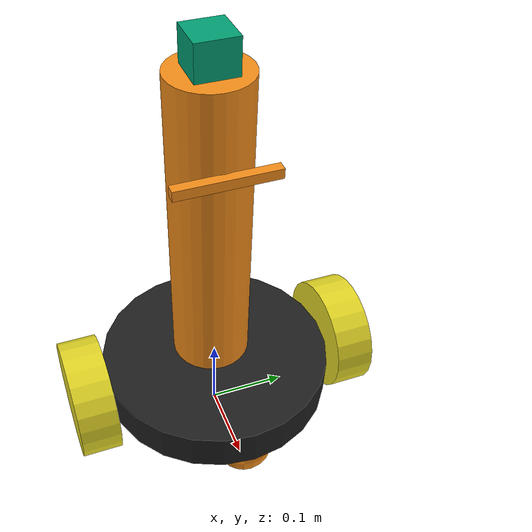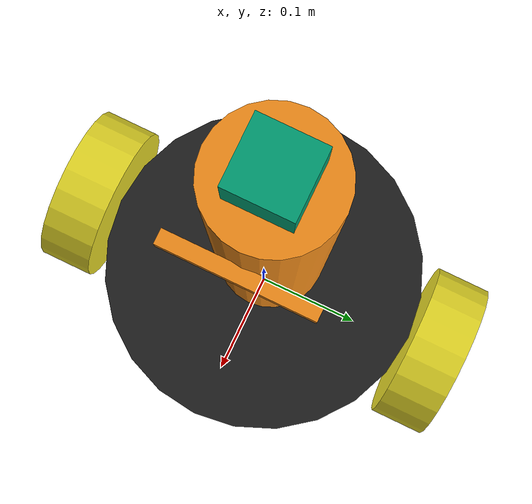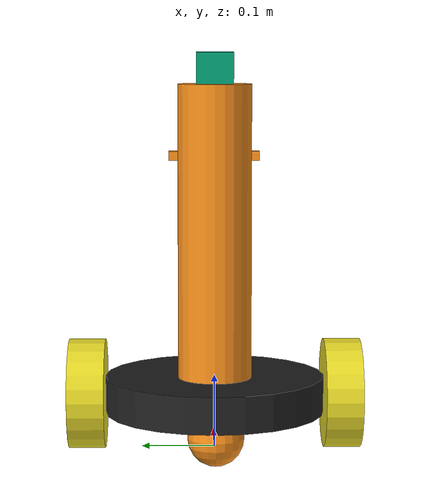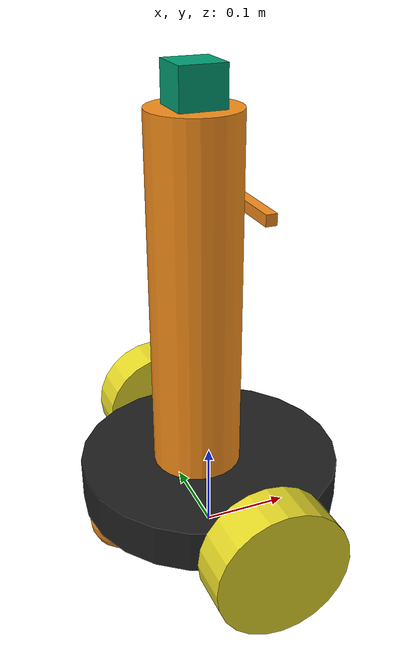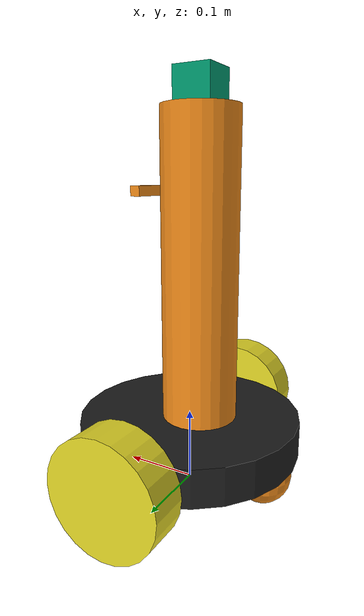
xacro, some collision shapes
<?xml version="1.0" ?>

<robot name="robokoko_bot" xmlns:xacro="http://www.ros.org/wiki/xacro">

  <xacro:include filename="$(find slam_project)/urdf/robokoko_scratch.gazebo" />

	<!-- Link robot footprint -->
  <link name="robot_footprint"/>

	<!-- Link chassis -->
  <link name="chassis_link">

		<visual>
      <geometry>
      	<cylinder length="0.05" radius="0.15"/>
      </geometry>
    </visual>

    <collision name="collision">
      <geometry>
      	<cylinder length="0.05" radius="0.15"/>
      </geometry>
    </collision>

    <inertial>
      <mass value="2.0"/>
      <inertia 	ixx="0.011666666666666665" ixy="0" ixz="0"
								iyy="0.011666666666666665" iyz="0"
						 		izz="0.0225"/>
    </inertial>

  </link>

	<!-- Link Front Caster -->
	<link name='front_caster_link'>

		<visual>
		  <geometry>
				<sphere radius="0.0375"/>
		  </geometry>
		</visual>

		<collision name='front_caster_collision'>
		  <geometry>
				<sphere radius="0.0375"/>
		  </geometry>
		</collision>

		<inertial>
			<mass value=".100"/>
			<inertia
			  ixx="5.6250000000000005e-05" ixy="0" ixz="0"
			  iyy="5.6250000000000005e-05" iyz="0"
			  izz="5.6250000000000005e-05"
			/>
		</inertial>

	</link>

	<!-- Link Back Caster -->
	<link name='back_caster_link'>

		<visual>
		  <geometry>
				<sphere radius="0.0375"/>
		  </geometry>
		</visual>

		<collision name='back_caster_collision'>
		  <geometry>
				<sphere radius="0.0375"/>
		  </geometry>
		</collision>

		<inertial>
			<mass value=".100"/>
			<inertia
			  ixx="5.6250000000000005e-05" ixy="0" ixz="0"
			  iyy="5.6250000000000005e-05" iyz="0"
			  izz="5.6250000000000005e-05"
			/>
		</inertial>

	</link>

	<!-- Link Left Wheel -->
	<link name='left_wheel_link'>

		<visual>
			<origin xyz="0.0 0 0" rpy="0 1.5707 1.5707"/>
			<geometry>
				<cylinder radius="0.075" length="0.05"/>
			</geometry>
		</visual>

		<collision name='collision'>
			<origin xyz="0.0 0 0" rpy="0 1.5707 1.5707"/>
			<geometry>
				<cylinder radius="0.075" length="0.05"/>
			</geometry>
		</collision>

		<inertial>
			<mass value="1"/>
			<origin xyz="0.0 0 0" rpy="0 1.5707 1.5707"/>
				<inertia
			  ixx="0.0016145833333333329" ixy="0" ixz="0"
			  iyy="0.0016145833333333329" iyz="0"
			  izz="0.0028125"/>
		</inertial>

	</link>

	<!-- Link Right Wheel -->
	<link name='right_wheel_link'>

		<visual>
			<origin xyz="0.0 0 0" rpy="0 1.5707 1.5707"/>
			<geometry>
				<cylinder radius="0.075" length="0.05"/>
			</geometry>
		</visual>

		<collision name='collision'>
			<origin xyz="0.0 0 0" rpy="0 1.5707 1.5707"/>
			<geometry>
				<cylinder radius="0.075" length="0.05"/>
			</geometry>
		</collision>

		<inertial>
			<mass value="1"/>
			<origin xyz="0.0 0 0" rpy="0 1.5707 1.5707"/>
				<inertia
			  ixx="0.0016145833333333329" ixy="0" ixz="0"
			  iyy="0.0016145833333333329" iyz="0"
			  izz="0.0028125"/>
		</inertial>

	</link>

	<!-- Link Body -->
	<link name='body_link'>

		<visual>
		  <geometry>
				<cylinder length="0.4" radius="0.05"/>
		  </geometry>
		</visual>

		<collision name='body_collision'>
		  <geometry>
				<cylinder length="0.4" radius="0.05"/>
		  </geometry>
		</collision>

		<inertial>
			<mass value="0.1"/>
			<inertia
			  ixx="8.333333333333334e-05" ixy="0" ixz="0"
			  iyy="8.333333333333334e-05" iyz="0"
			  izz="0.00012500000000000003"
			/>
		</inertial>

	</link>

	<!-- Link Camera -->
	<link name='camera_link'>

		<visual>
			<geometry>
				<box size="0.0125 0.125 0.0125"/>
			</geometry>
		</visual>

		<collision name='collision'>
			<geometry>
				<box size="0.0125 0.125 0.0125"/>
			</geometry>
		</collision>

		<inertial>
			<mass value="0.05"/>
			<inertia
			  ixx="1e-6" ixy="0" ixz="0"
			  iyy="1e-6" iyz="0"
			  izz="1e-6"
			/>
		</inertial>

	</link>

	<!-- Link RGB-D  -->
	<link name='camera_rgbd_frame'></link>

	<link name='imu_link'></link>

	<!-- Link Lidar  -->
	<link name='hokuyo'>

		<visual>
			<geometry>
				<mesh filename="package://slam_project/meshes/hokuyo.dae"/>
			</geometry>
		</visual>

		<collision name='collision'>
			<geometry>
				<box size="0.05 0.05 0.05"/>
			</geometry>
		</collision>

		<inertial>
			<mass value="0.05"/>
			<inertia
			  ixx="1e-6" ixy="0" ixz="0"
			  iyy="1e-6" iyz="0"
			  izz="1e-6"
			/>
		</inertial>

	</link>

	<!-- Joint Robot footprint  -->
  <joint name="robot_footprint_joint" type="fixed">
	  <origin xyz="0 0 0.075" rpy="0 0 0" />
    <parent link="robot_footprint"/>
    <child link="chassis_link"/>
  </joint>

	<!-- Joint left wheel  -->
	<joint name="left_wheel_joint" type="continuous" >
		<origin xyz="0 0.175 0" rpy="0 0 0"/>
		<axis xyz="0 1 0">
			<dynamics>
				<damping>1.0</damping>
				<friction>1.0</friction>
			</dynamics>
		</axis>
		<limit effort="10000" velocity="1000"/>
		<parent link="chassis_link"/>
		<child link="left_wheel_link"/>
	</joint>

	<!-- Joint right wheel  -->
	<joint name="right_wheel_joint" type="continuous" >
    <origin xyz="0 -0.175 0" rpy="0 0 0"/>
		<axis xyz="0 1 0">
			<dynamics>
				<damping>1.0</damping>
				<friction>1.0</friction>
			</dynamics>
		</axis>
		<limit effort="10000" velocity="1000"/>
		<parent link="chassis_link"/>
		<child link="right_wheel_link"/>
	</joint>

	<!-- Joint front caster  -->
	<joint name="front_caster_joint" type="fixed" >
		<origin xyz="0.11 0 -0.0375" rpy="0 0 0"/>
		<parent link="chassis_link"/>
		<child link="front_caster_link"/>
	</joint>

	<!-- Joint back caster  -->
	<joint name="back_caster_joint" type="fixed" >
		<origin xyz="-0.11 0 -0.0375" rpy="0 0 0"/>
		<parent link="chassis_link"/>
		<child link="back_caster_link"/>
	</joint>

	<!-- Joint body  -->
	<joint name="body_joint" type="fixed" >
		<origin xyz="-0.015 0 0.225" rpy="0 0 0"/>
		<parent link="chassis_link"/>
		<child link="body_link"/>
	</joint>

	<!-- Joint lidar  -->
	<joint name="lidar_joint" type="fixed" >
    <origin xyz="0 0 0.2175" rpy="0 0 0"/>
		<parent link="body_link"/>
		<child link="hokuyo"/>
	</joint>

	<!-- Joint camera  -->
	<joint name="camera_joint" type="fixed" >
    <origin xyz="0.055 0 0.1" rpy="0 0 0"/>
		<parent link="body_link"/>
		<child link="camera_link"/>
	</joint>

	<!-- Joint camera rgbd  -->
	<joint name="camera_rgbd_joint" type="fixed" >
		<parent link="camera_link"/>
		<child link="camera_rgbd_frame"/>
		<origin xyz="0 0 0" rpy="-1.57 0 -1.57"/>
	</joint>

	<!-- Joint Imu  -->
	<joint name="imu_joint" type="fixed" >
		<parent link="body_link"/>
		<child link="imu_link"/>
		<origin xyz="0 0 0" rpy="0 0 0"/>
	</joint>

</robot>
